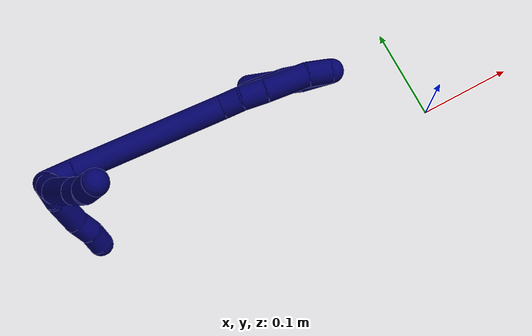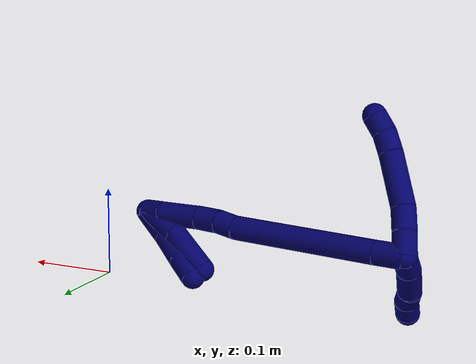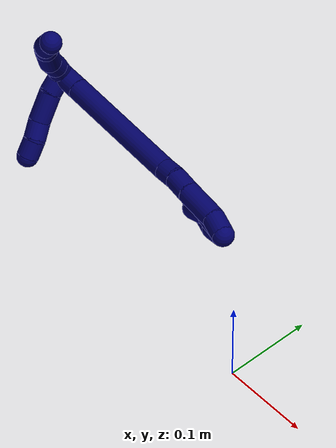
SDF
<sdf version="1.7">
 <world name="default">
  <model name="7">
   <static>0</static>
   <link name="7">
    <collision name="collision-cylinder-e_1_2_8">
     <pose>-0.0008 -0.004856 0.011464 0.400642 -0.064195 -0.013039</pose>
     <geometry><cylinder><radius>0.0125</radius><length>0.024951</length></cylinder></geometry>
     <surface>
      <friction><ode><mu>1.16</mu><mu2>1.16</mu2><slip1>0</slip1><slip2>0</slip2></ode></friction>
      <contact><ode><kp>1e+06</kp><kd>1</kd><max_vel>0</max_vel><min_depth>0.001</min_depth></ode></contact>
     </surface>
    </collision>
    <visual name="visual-cylinder-e_1_2_8">
     <pose>-0.0008 -0.004856 0.011464 0.400642 -0.064195 -0.013039</pose>
     <geometry><cylinder><radius>0.0125</radius><length>0.024951</length></cylinder></geometry>
     <material><ambient>0.003922 0 0.403922 1</ambient></material>
    </visual>
    <collision name="collision-cylinder-e_2_8_9">
     <pose>-0.001275 -0.015504 0.033944 0.484099 0.026154 0.006457</pose>
     <geometry><cylinder><radius>0.0125</radius><length>0.024902</length></cylinder></geometry>
     <surface>
      <friction><ode><mu>1.16</mu><mu2>1.16</mu2><slip1>0</slip1><slip2>0</slip2></ode></friction>
      <contact><ode><kp>1e+06</kp><kd>1</kd><max_vel>0</max_vel><min_depth>0.001</min_depth></ode></contact>
     </surface>
    </collision>
    <visual name="visual-cylinder-e_2_8_9">
     <pose>-0.001275 -0.015504 0.033944 0.484099 0.026154 0.006457</pose>
     <geometry><cylinder><radius>0.0125</radius><length>0.024902</length></cylinder></geometry>
     <material><ambient>0.003922 0 0.403922 1</ambient></material>
    </visual>
    <collision name="collision-cylinder-e_3_9_10">
     <pose>0.002935 -0.030438 0.071693 0.329493 0.136627 0.022749</pose>
     <geometry><cylinder><radius>0.0125</radius><length>0.057035</length></cylinder></geometry>
     <surface>
      <friction><ode><mu>1.16</mu><mu2>1.16</mu2><slip1>0</slip1><slip2>0</slip2></ode></friction>
      <contact><ode><kp>1e+06</kp><kd>1</kd><max_vel>0</max_vel><min_depth>0.001</min_depth></ode></contact>
     </surface>
    </collision>
    <visual name="visual-cylinder-e_3_9_10">
     <pose>0.002935 -0.030438 0.071693 0.329493 0.136627 0.022749</pose>
     <geometry><cylinder><radius>0.0125</radius><length>0.057035</length></cylinder></geometry>
     <material><ambient>0.003922 0 0.403922 1</ambient></material>
    </visual>
    <collision name="collision-cylinder-e_4_10_11">
     <pose>0.009257 -0.043149 0.109014 0.32513 0.214803 0.035363</pose>
     <geometry><cylinder><radius>0.0125</radius><length>0.022875</length></cylinder></geometry>
     <surface>
      <friction><ode><mu>1.16</mu><mu2>1.16</mu2><slip1>0</slip1><slip2>0</slip2></ode></friction>
      <contact><ode><kp>1e+06</kp><kd>1</kd><max_vel>0</max_vel><min_depth>0.001</min_depth></ode></contact>
     </surface>
    </collision>
    <visual name="visual-cylinder-e_4_10_11">
     <pose>0.009257 -0.043149 0.109014 0.32513 0.214803 0.035363</pose>
     <geometry><cylinder><radius>0.0125</radius><length>0.022875</length></cylinder></geometry>
     <material><ambient>0.003922 0 0.403922 1</ambient></material>
    </visual>
    <collision name="collision-cylinder-e_5_11_6">
     <pose>0.014812 -0.046971 0.129226 0.026224 0.313187 0.004141</pose>
     <geometry><cylinder><radius>0.0125</radius><length>0.020237</length></cylinder></geometry>
     <surface>
      <friction><ode><mu>1.16</mu><mu2>1.16</mu2><slip1>0</slip1><slip2>0</slip2></ode></friction>
      <contact><ode><kp>1e+06</kp><kd>1</kd><max_vel>0</max_vel><min_depth>0.001</min_depth></ode></contact>
     </surface>
    </collision>
    <visual name="visual-cylinder-e_5_11_6">
     <pose>0.014812 -0.046971 0.129226 0.026224 0.313187 0.004141</pose>
     <geometry><cylinder><radius>0.0125</radius><length>0.020237</length></cylinder></geometry>
     <material><ambient>0.003922 0 0.403922 1</ambient></material>
    </visual>
    <collision name="collision-cylinder-e_1_2_12">
     <pose>0.003812 -0.008352 -0.007495 2.30217 0.327441 0.709132</pose>
     <geometry><cylinder><radius>0.0125</radius><length>0.023703</length></cylinder></geometry>
     <surface>
      <friction><ode><mu>1.16</mu><mu2>1.16</mu2><slip1>0</slip1><slip2>0</slip2></ode></friction>
      <contact><ode><kp>1e+06</kp><kd>1</kd><max_vel>0</max_vel><min_depth>0.001</min_depth></ode></contact>
     </surface>
    </collision>
    <visual name="visual-cylinder-e_1_2_12">
     <pose>0.003812 -0.008352 -0.007495 2.30217 0.327441 0.709132</pose>
     <geometry><cylinder><radius>0.0125</radius><length>0.023703</length></cylinder></geometry>
     <material><ambient>0.003922 0 0.403922 1</ambient></material>
    </visual>
    <collision name="collision-cylinder-e_2_12_13">
     <pose>0.015179 -0.026808 -0.027015 2.44282 0.448342 1.11836</pose>
     <geometry><cylinder><radius>0.0125</radius><length>0.034859</length></cylinder></geometry>
     <surface>
      <friction><ode><mu>1.16</mu><mu2>1.16</mu2><slip1>0</slip1><slip2>0</slip2></ode></friction>
      <contact><ode><kp>1e+06</kp><kd>1</kd><max_vel>0</max_vel><min_depth>0.001</min_depth></ode></contact>
     </surface>
    </collision>
    <visual name="visual-cylinder-e_2_12_13">
     <pose>0.015179 -0.026808 -0.027015 2.44282 0.448342 1.11836</pose>
     <geometry><cylinder><radius>0.0125</radius><length>0.034859</length></cylinder></geometry>
     <material><ambient>0.003922 0 0.403922 1</ambient></material>
    </visual>
    <collision name="collision-cylinder-e_3_13_14">
     <pose>0.028974 -0.043162 -0.044572 2.29516 0.642028 1.27183</pose>
     <geometry><cylinder><radius>0.0125</radius><length>0.020842</length></cylinder></geometry>
     <surface>
      <friction><ode><mu>1.16</mu><mu2>1.16</mu2><slip1>0</slip1><slip2>0</slip2></ode></friction>
      <contact><ode><kp>1e+06</kp><kd>1</kd><max_vel>0</max_vel><min_depth>0.001</min_depth></ode></contact>
     </surface>
    </collision>
    <visual name="visual-cylinder-e_3_13_14">
     <pose>0.028974 -0.043162 -0.044572 2.29516 0.642028 1.27183</pose>
     <geometry><cylinder><radius>0.0125</radius><length>0.020842</length></cylinder></geometry>
     <material><ambient>0.003922 0 0.403922 1</ambient></material>
    </visual>
    <collision name="collision-cylinder-e_4_14_5">
     <pose>0.039421 -0.055389 -0.057358 2.45254 0.420753 1.07358</pose>
     <geometry><cylinder><radius>0.0125</radius><length>0.020596</length></cylinder></geometry>
     <surface>
      <friction><ode><mu>1.16</mu><mu2>1.16</mu2><slip1>0</slip1><slip2>0</slip2></ode></friction>
      <contact><ode><kp>1e+06</kp><kd>1</kd><max_vel>0</max_vel><min_depth>0.001</min_depth></ode></contact>
     </surface>
    </collision>
    <visual name="visual-cylinder-e_4_14_5">
     <pose>0.039421 -0.055389 -0.057358 2.45254 0.420753 1.07358</pose>
     <geometry><cylinder><radius>0.0125</radius><length>0.020596</length></cylinder></geometry>
     <material><ambient>0.003922 0 0.403922 1</ambient></material>
    </visual>
    <collision name="collision-cylinder-e_1_2_15">
     <pose>0.01428 0.001069 0.00508 -0.207473 1.22213 -0.145602</pose>
     <geometry><cylinder><radius>0.0125</radius><length>0.030388</length></cylinder></geometry>
     <surface>
      <friction><ode><mu>1.16</mu><mu2>1.16</mu2><slip1>0</slip1><slip2>0</slip2></ode></friction>
      <contact><ode><kp>1e+06</kp><kd>1</kd><max_vel>0</max_vel><min_depth>0.001</min_depth></ode></contact>
     </surface>
    </collision>
    <visual name="visual-cylinder-e_1_2_15">
     <pose>0.01428 0.001069 0.00508 -0.207473 1.22213 -0.145602</pose>
     <geometry><cylinder><radius>0.0125</radius><length>0.030388</length></cylinder></geometry>
     <material><ambient>0.003922 0 0.403922 1</ambient></material>
    </visual>
    <collision name="collision-cylinder-e_2_15_16">
     <pose>0.101369 0.006324 0.036774 -0.155997 1.21639 -0.108724</pose>
     <geometry><cylinder><radius>0.0125</radius><length>0.155268</length></cylinder></geometry>
     <surface>
      <friction><ode><mu>1.16</mu><mu2>1.16</mu2><slip1>0</slip1><slip2>0</slip2></ode></friction>
      <contact><ode><kp>1e+06</kp><kd>1</kd><max_vel>0</max_vel><min_depth>0.001</min_depth></ode></contact>
     </surface>
    </collision>
    <visual name="visual-cylinder-e_2_15_16">
     <pose>0.101369 0.006324 0.036774 -0.155997 1.21639 -0.108724</pose>
     <geometry><cylinder><radius>0.0125</radius><length>0.155268</length></cylinder></geometry>
     <material><ambient>0.003922 0 0.403922 1</ambient></material>
    </visual>
    <collision name="collision-cylinder-e_3_16_17">
     <pose>0.183158 0.010769 0.068374 -0.051872 1.06347 -0.030518</pose>
     <geometry><cylinder><radius>0.0125</radius><length>0.020548</length></cylinder></geometry>
     <surface>
      <friction><ode><mu>1.16</mu><mu2>1.16</mu2><slip1>0</slip1><slip2>0</slip2></ode></friction>
      <contact><ode><kp>1e+06</kp><kd>1</kd><max_vel>0</max_vel><min_depth>0.001</min_depth></ode></contact>
     </surface>
    </collision>
    <visual name="visual-cylinder-e_3_16_17">
     <pose>0.183158 0.010769 0.068374 -0.051872 1.06347 -0.030518</pose>
     <geometry><cylinder><radius>0.0125</radius><length>0.020548</length></cylinder></geometry>
     <material><ambient>0.003922 0 0.403922 1</ambient></material>
    </visual>
    <collision name="collision-cylinder-e_4_17_18">
     <pose>0.203782 0.010688 0.07754 0.081114 1.22496 0.057008</pose>
     <geometry><cylinder><radius>0.0125</radius><length>0.024753</length></cylinder></geometry>
     <surface>
      <friction><ode><mu>1.16</mu><mu2>1.16</mu2><slip1>0</slip1><slip2>0</slip2></ode></friction>
      <contact><ode><kp>1e+06</kp><kd>1</kd><max_vel>0</max_vel><min_depth>0.001</min_depth></ode></contact>
     </surface>
    </collision>
    <visual name="visual-cylinder-e_4_17_18">
     <pose>0.203782 0.010688 0.07754 0.081114 1.22496 0.057008</pose>
     <geometry><cylinder><radius>0.0125</radius><length>0.024753</length></cylinder></geometry>
     <material><ambient>0.003922 0 0.403922 1</ambient></material>
    </visual>
    <collision name="collision-cylinder-e_5_18_19">
     <pose>0.236675 0.010968 0.08833 -0.093546 1.26807 -0.068809</pose>
     <geometry><cylinder><radius>0.0125</radius><length>0.044524</length></cylinder></geometry>
     <surface>
      <friction><ode><mu>1.16</mu><mu2>1.16</mu2><slip1>0</slip1><slip2>0</slip2></ode></friction>
      <contact><ode><kp>1e+06</kp><kd>1</kd><max_vel>0</max_vel><min_depth>0.001</min_depth></ode></contact>
     </surface>
    </collision>
    <visual name="visual-cylinder-e_5_18_19">
     <pose>0.236675 0.010968 0.08833 -0.093546 1.26807 -0.068809</pose>
     <geometry><cylinder><radius>0.0125</radius><length>0.044524</length></cylinder></geometry>
     <material><ambient>0.003922 0 0.403922 1</ambient></material>
    </visual>
    <collision name="collision-cylinder-e_6_19_1">
     <pose>0.269594 0.009263 0.097891 0.666973 1.25916 0.494401</pose>
     <geometry><cylinder><radius>0.0125</radius><length>0.024519</length></cylinder></geometry>
     <surface>
      <friction><ode><mu>1.16</mu><mu2>1.16</mu2><slip1>0</slip1><slip2>0</slip2></ode></friction>
      <contact><ode><kp>1e+06</kp><kd>1</kd><max_vel>0</max_vel><min_depth>0.001</min_depth></ode></contact>
     </surface>
    </collision>
    <visual name="visual-cylinder-e_6_19_1">
     <pose>0.269594 0.009263 0.097891 0.666973 1.25916 0.494401</pose>
     <geometry><cylinder><radius>0.0125</radius><length>0.024519</length></cylinder></geometry>
     <material><ambient>0.003922 0 0.403922 1</ambient></material>
    </visual>
    <collision name="collision-cylinder-e_1_1_20">
     <pose>0.270721 0.010911 0.086163 -2.87729 -0.606089 2.33764</pose>
     <geometry><cylinder><radius>0.0125</radius><length>0.037012</length></cylinder></geometry>
     <surface>
      <friction><ode><mu>1.16</mu><mu2>1.16</mu2><slip1>0</slip1><slip2>0</slip2></ode></friction>
      <contact><ode><kp>1e+06</kp><kd>1</kd><max_vel>0</max_vel><min_depth>0.001</min_depth></ode></contact>
     </surface>
    </collision>
    <visual name="visual-cylinder-e_1_1_20">
     <pose>0.270721 0.010911 0.086163 -2.87729 -0.606089 2.33764</pose>
     <geometry><cylinder><radius>0.0125</radius><length>0.037012</length></cylinder></geometry>
     <material><ambient>0.003922 0 0.403922 1</ambient></material>
    </visual>
    <collision name="collision-cylinder-e_2_20_21">
     <pose>0.250012 0.021032 0.058173 -2.70883 -0.606326 1.91646</pose>
     <geometry><cylinder><radius>0.0125</radius><length>0.03568</length></cylinder></geometry>
     <surface>
      <friction><ode><mu>1.16</mu><mu2>1.16</mu2><slip1>0</slip1><slip2>0</slip2></ode></friction>
      <contact><ode><kp>1e+06</kp><kd>1</kd><max_vel>0</max_vel><min_depth>0.001</min_depth></ode></contact>
     </surface>
    </collision>
    <visual name="visual-cylinder-e_2_20_21">
     <pose>0.250012 0.021032 0.058173 -2.70883 -0.606326 1.91646</pose>
     <geometry><cylinder><radius>0.0125</radius><length>0.03568</length></cylinder></geometry>
     <material><ambient>0.003922 0 0.403922 1</ambient></material>
    </visual>
    <collision name="collision-cylinder-e_3_21_4">
     <pose>0.231871 0.031619 0.034709 -2.72951 -0.623719 1.9912</pose>
     <geometry><cylinder><radius>0.0125</radius><length>0.027308</length></cylinder></geometry>
     <surface>
      <friction><ode><mu>1.16</mu><mu2>1.16</mu2><slip1>0</slip1><slip2>0</slip2></ode></friction>
      <contact><ode><kp>1e+06</kp><kd>1</kd><max_vel>0</max_vel><min_depth>0.001</min_depth></ode></contact>
     </surface>
    </collision>
    <visual name="visual-cylinder-e_3_21_4">
     <pose>0.231871 0.031619 0.034709 -2.72951 -0.623719 1.9912</pose>
     <geometry><cylinder><radius>0.0125</radius><length>0.027308</length></cylinder></geometry>
     <material><ambient>0.003922 0 0.403922 1</ambient></material>
    </visual>
    <collision name="collision-cylinder-e_1_1_22">
     <pose>0.262814 0.013062 0.085668 -2.758 -0.845175 2.32631</pose>
     <geometry><cylinder><radius>0.0125</radius><length>0.049323</length></cylinder></geometry>
     <surface>
      <friction><ode><mu>1.16</mu><mu2>1.16</mu2><slip1>0</slip1><slip2>0</slip2></ode></friction>
      <contact><ode><kp>1e+06</kp><kd>1</kd><max_vel>0</max_vel><min_depth>0.001</min_depth></ode></contact>
     </surface>
    </collision>
    <visual name="visual-cylinder-e_1_1_22">
     <pose>0.262814 0.013062 0.085668 -2.758 -0.845175 2.32631</pose>
     <geometry><cylinder><radius>0.0125</radius><length>0.049323</length></cylinder></geometry>
     <material><ambient>0.003922 0 0.403922 1</ambient></material>
    </visual>
    <collision name="collision-cylinder-e_2_22_3">
     <pose>0.230243 0.023189 0.049838 -2.9502 -0.591145 2.53084</pose>
     <geometry><cylinder><radius>0.0125</radius><length>0.050677</length></cylinder></geometry>
     <surface>
      <friction><ode><mu>1.16</mu><mu2>1.16</mu2><slip1>0</slip1><slip2>0</slip2></ode></friction>
      <contact><ode><kp>1e+06</kp><kd>1</kd><max_vel>0</max_vel><min_depth>0.001</min_depth></ode></contact>
     </surface>
    </collision>
    <visual name="visual-cylinder-e_2_22_3">
     <pose>0.230243 0.023189 0.049838 -2.9502 -0.591145 2.53084</pose>
     <geometry><cylinder><radius>0.0125</radius><length>0.050677</length></cylinder></geometry>
     <material><ambient>0.003922 0 0.403922 1</ambient></material>
    </visual>
    <collision name="collision-sphere-3">
     <pose>0.216122 0.027191 0.029183 0 -0 0</pose>
     <geometry><sphere><radius>0.0125</radius></sphere></geometry>
     <surface>
      <friction><ode><mu>1.16</mu><mu2>1.16</mu2><slip1>0</slip1><slip2>0</slip2></ode></friction>
      <contact><ode><kp>1e+06</kp><kd>1</kd><max_vel>0</max_vel><min_depth>0.001</min_depth></ode></contact>
     </surface>
    </collision>
    <visual name="visual-sphere-3">
     <pose>0.216122 0.027191 0.029183 0 -0 0</pose>
     <geometry><sphere><radius>0.0125</radius></sphere></geometry>
     <material><ambient>0.003922 0 0.403922 1</ambient></material>
    </visual>
    <collision name="collision-sphere-22">
     <pose>0.244365 0.019187 0.070492 0 -0 0</pose>
     <geometry><sphere><radius>0.0125</radius></sphere></geometry>
     <surface>
      <friction><ode><mu>1.16</mu><mu2>1.16</mu2><slip1>0</slip1><slip2>0</slip2></ode></friction>
      <contact><ode><kp>1e+06</kp><kd>1</kd><max_vel>0</max_vel><min_depth>0.001</min_depth></ode></contact>
     </surface>
    </collision>
    <visual name="visual-sphere-22">
     <pose>0.244365 0.019187 0.070492 0 -0 0</pose>
     <geometry><sphere><radius>0.0125</radius></sphere></geometry>
     <material><ambient>0.003922 0 0.403922 1</ambient></material>
    </visual>
    <collision name="collision-sphere-4">
     <pose>0.223897 0.036058 0.024553 0 -0 0</pose>
     <geometry><sphere><radius>0.0125</radius></sphere></geometry>
     <surface>
      <friction><ode><mu>1.16</mu><mu2>1.16</mu2><slip1>0</slip1><slip2>0</slip2></ode></friction>
      <contact><ode><kp>1e+06</kp><kd>1</kd><max_vel>0</max_vel><min_depth>0.001</min_depth></ode></contact>
     </surface>
    </collision>
    <visual name="visual-sphere-4">
     <pose>0.223897 0.036058 0.024553 0 -0 0</pose>
     <geometry><sphere><radius>0.0125</radius></sphere></geometry>
     <material><ambient>0.003922 0 0.403922 1</ambient></material>
    </visual>
    <collision name="collision-sphere-21">
     <pose>0.239846 0.02718 0.044864 0 -0 0</pose>
     <geometry><sphere><radius>0.0125</radius></sphere></geometry>
     <surface>
      <friction><ode><mu>1.16</mu><mu2>1.16</mu2><slip1>0</slip1><slip2>0</slip2></ode></friction>
      <contact><ode><kp>1e+06</kp><kd>1</kd><max_vel>0</max_vel><min_depth>0.001</min_depth></ode></contact>
     </surface>
    </collision>
    <visual name="visual-sphere-21">
     <pose>0.239846 0.02718 0.044864 0 -0 0</pose>
     <geometry><sphere><radius>0.0125</radius></sphere></geometry>
     <material><ambient>0.003922 0 0.403922 1</ambient></material>
    </visual>
    <collision name="collision-sphere-20">
     <pose>0.260179 0.014884 0.071481 0 -0 0</pose>
     <geometry><sphere><radius>0.0125</radius></sphere></geometry>
     <surface>
      <friction><ode><mu>1.16</mu><mu2>1.16</mu2><slip1>0</slip1><slip2>0</slip2></ode></friction>
      <contact><ode><kp>1e+06</kp><kd>1</kd><max_vel>0</max_vel><min_depth>0.001</min_depth></ode></contact>
     </surface>
    </collision>
    <visual name="visual-sphere-20">
     <pose>0.260179 0.014884 0.071481 0 -0 0</pose>
     <geometry><sphere><radius>0.0125</radius></sphere></geometry>
     <material><ambient>0.003922 0 0.403922 1</ambient></material>
    </visual>
    <collision name="collision-sphere-6">
     <pose>0.01793 -0.047223 0.138849 0 -0 0</pose>
     <geometry><sphere><radius>0.0125</radius></sphere></geometry>
     <surface>
      <friction><ode><mu>1.16</mu><mu2>1.16</mu2><slip1>0</slip1><slip2>0</slip2></ode></friction>
      <contact><ode><kp>1e+06</kp><kd>1</kd><max_vel>0</max_vel><min_depth>0.001</min_depth></ode></contact>
     </surface>
    </collision>
    <visual name="visual-sphere-6">
     <pose>0.01793 -0.047223 0.138849 0 -0 0</pose>
     <geometry><sphere><radius>0.0125</radius></sphere></geometry>
     <material><ambient>0.003922 0 0.403922 1</ambient></material>
    </visual>
    <collision name="collision-sphere-11">
     <pose>0.011695 -0.046718 0.119603 0 -0 0</pose>
     <geometry><sphere><radius>0.0125</radius></sphere></geometry>
     <surface>
      <friction><ode><mu>1.16</mu><mu2>1.16</mu2><slip1>0</slip1><slip2>0</slip2></ode></friction>
      <contact><ode><kp>1e+06</kp><kd>1</kd><max_vel>0</max_vel><min_depth>0.001</min_depth></ode></contact>
     </surface>
    </collision>
    <visual name="visual-sphere-11">
     <pose>0.011695 -0.046718 0.119603 0 -0 0</pose>
     <geometry><sphere><radius>0.0125</radius></sphere></geometry>
     <material><ambient>0.003922 0 0.403922 1</ambient></material>
    </visual>
    <collision name="collision-sphere-10">
     <pose>0.006819 -0.039579 0.098425 0 -0 0</pose>
     <geometry><sphere><radius>0.0125</radius></sphere></geometry>
     <surface>
      <friction><ode><mu>1.16</mu><mu2>1.16</mu2><slip1>0</slip1><slip2>0</slip2></ode></friction>
      <contact><ode><kp>1e+06</kp><kd>1</kd><max_vel>0</max_vel><min_depth>0.001</min_depth></ode></contact>
     </surface>
    </collision>
    <visual name="visual-sphere-10">
     <pose>0.006819 -0.039579 0.098425 0 -0 0</pose>
     <geometry><sphere><radius>0.0125</radius></sphere></geometry>
     <material><ambient>0.003922 0 0.403922 1</ambient></material>
    </visual>
    <collision name="collision-sphere-9">
     <pose>-0.000949 -0.021297 0.044961 0 -0 0</pose>
     <geometry><sphere><radius>0.0125</radius></sphere></geometry>
     <surface>
      <friction><ode><mu>1.16</mu><mu2>1.16</mu2><slip1>0</slip1><slip2>0</slip2></ode></friction>
      <contact><ode><kp>1e+06</kp><kd>1</kd><max_vel>0</max_vel><min_depth>0.001</min_depth></ode></contact>
     </surface>
    </collision>
    <visual name="visual-sphere-9">
     <pose>-0.000949 -0.021297 0.044961 0 -0 0</pose>
     <geometry><sphere><radius>0.0125</radius></sphere></geometry>
     <material><ambient>0.003922 0 0.403922 1</ambient></material>
    </visual>
    <collision name="collision-sphere-2">
     <geometry><sphere><radius>0.0125</radius></sphere></geometry>
     <surface>
      <friction><ode><mu>1.16</mu><mu2>1.16</mu2><slip1>0</slip1><slip2>0</slip2></ode></friction>
      <contact><ode><kp>1e+06</kp><kd>1</kd><max_vel>0</max_vel><min_depth>0.001</min_depth></ode></contact>
     </surface>
    </collision>
    <visual name="visual-sphere-2">
     <geometry><sphere><radius>0.0125</radius></sphere></geometry>
     <material><ambient>0.003922 0 0.403922 1</ambient></material>
    </visual>
    <collision name="collision-sphere-19">
     <pose>0.257925 0.011588 0.094937 0 -0 0</pose>
     <geometry><sphere><radius>0.0125</radius></sphere></geometry>
     <surface>
      <friction><ode><mu>1.16</mu><mu2>1.16</mu2><slip1>0</slip1><slip2>0</slip2></ode></friction>
      <contact><ode><kp>1e+06</kp><kd>1</kd><max_vel>0</max_vel><min_depth>0.001</min_depth></ode></contact>
     </surface>
    </collision>
    <visual name="visual-sphere-19">
     <pose>0.257925 0.011588 0.094937 0 -0 0</pose>
     <geometry><sphere><radius>0.0125</radius></sphere></geometry>
     <material><ambient>0.003922 0 0.403922 1</ambient></material>
    </visual>
    <collision name="collision-sphere-8">
     <pose>-0.001601 -0.009711 0.022928 0 -0 0</pose>
     <geometry><sphere><radius>0.0125</radius></sphere></geometry>
     <surface>
      <friction><ode><mu>1.16</mu><mu2>1.16</mu2><slip1>0</slip1><slip2>0</slip2></ode></friction>
      <contact><ode><kp>1e+06</kp><kd>1</kd><max_vel>0</max_vel><min_depth>0.001</min_depth></ode></contact>
     </surface>
    </collision>
    <visual name="visual-sphere-8">
     <pose>-0.001601 -0.009711 0.022928 0 -0 0</pose>
     <geometry><sphere><radius>0.0125</radius></sphere></geometry>
     <material><ambient>0.003922 0 0.403922 1</ambient></material>
    </visual>
    <collision name="collision-sphere-12">
     <pose>0.007623 -0.016704 -0.01499 0 -0 0</pose>
     <geometry><sphere><radius>0.0125</radius></sphere></geometry>
     <surface>
      <friction><ode><mu>1.16</mu><mu2>1.16</mu2><slip1>0</slip1><slip2>0</slip2></ode></friction>
      <contact><ode><kp>1e+06</kp><kd>1</kd><max_vel>0</max_vel><min_depth>0.001</min_depth></ode></contact>
     </surface>
    </collision>
    <visual name="visual-sphere-12">
     <pose>0.007623 -0.016704 -0.01499 0 -0 0</pose>
     <geometry><sphere><radius>0.0125</radius></sphere></geometry>
     <material><ambient>0.003922 0 0.403922 1</ambient></material>
    </visual>
    <collision name="collision-sphere-13">
     <pose>0.022734 -0.036912 -0.039041 0 -0 0</pose>
     <geometry><sphere><radius>0.0125</radius></sphere></geometry>
     <surface>
      <friction><ode><mu>1.16</mu><mu2>1.16</mu2><slip1>0</slip1><slip2>0</slip2></ode></friction>
      <contact><ode><kp>1e+06</kp><kd>1</kd><max_vel>0</max_vel><min_depth>0.001</min_depth></ode></contact>
     </surface>
    </collision>
    <visual name="visual-sphere-13">
     <pose>0.022734 -0.036912 -0.039041 0 -0 0</pose>
     <geometry><sphere><radius>0.0125</radius></sphere></geometry>
     <material><ambient>0.003922 0 0.403922 1</ambient></material>
    </visual>
    <collision name="collision-sphere-14">
     <pose>0.035215 -0.049413 -0.050102 0 -0 0</pose>
     <geometry><sphere><radius>0.0125</radius></sphere></geometry>
     <surface>
      <friction><ode><mu>1.16</mu><mu2>1.16</mu2><slip1>0</slip1><slip2>0</slip2></ode></friction>
      <contact><ode><kp>1e+06</kp><kd>1</kd><max_vel>0</max_vel><min_depth>0.001</min_depth></ode></contact>
     </surface>
    </collision>
    <visual name="visual-sphere-14">
     <pose>0.035215 -0.049413 -0.050102 0 -0 0</pose>
     <geometry><sphere><radius>0.0125</radius></sphere></geometry>
     <material><ambient>0.003922 0 0.403922 1</ambient></material>
    </visual>
    <collision name="collision-sphere-5">
     <pose>0.043627 -0.061366 -0.064613 0 -0 0</pose>
     <geometry><sphere><radius>0.0125</radius></sphere></geometry>
     <surface>
      <friction><ode><mu>1.16</mu><mu2>1.16</mu2><slip1>0</slip1><slip2>0</slip2></ode></friction>
      <contact><ode><kp>1e+06</kp><kd>1</kd><max_vel>0</max_vel><min_depth>0.001</min_depth></ode></contact>
     </surface>
    </collision>
    <visual name="visual-sphere-5">
     <pose>0.043627 -0.061366 -0.064613 0 -0 0</pose>
     <geometry><sphere><radius>0.0125</radius></sphere></geometry>
     <material><ambient>0.003922 0 0.403922 1</ambient></material>
    </visual>
    <collision name="collision-sphere-15">
     <pose>0.028559 0.002139 0.010159 0 -0 0</pose>
     <geometry><sphere><radius>0.0125</radius></sphere></geometry>
     <surface>
      <friction><ode><mu>1.16</mu><mu2>1.16</mu2><slip1>0</slip1><slip2>0</slip2></ode></friction>
      <contact><ode><kp>1e+06</kp><kd>1</kd><max_vel>0</max_vel><min_depth>0.001</min_depth></ode></contact>
     </surface>
    </collision>
    <visual name="visual-sphere-15">
     <pose>0.028559 0.002139 0.010159 0 -0 0</pose>
     <geometry><sphere><radius>0.0125</radius></sphere></geometry>
     <material><ambient>0.003922 0 0.403922 1</ambient></material>
    </visual>
    <collision name="collision-sphere-16">
     <pose>0.174178 0.01051 0.063389 0 -0 0</pose>
     <geometry><sphere><radius>0.0125</radius></sphere></geometry>
     <surface>
      <friction><ode><mu>1.16</mu><mu2>1.16</mu2><slip1>0</slip1><slip2>0</slip2></ode></friction>
      <contact><ode><kp>1e+06</kp><kd>1</kd><max_vel>0</max_vel><min_depth>0.001</min_depth></ode></contact>
     </surface>
    </collision>
    <visual name="visual-sphere-16">
     <pose>0.174178 0.01051 0.063389 0 -0 0</pose>
     <geometry><sphere><radius>0.0125</radius></sphere></geometry>
     <material><ambient>0.003922 0 0.403922 1</ambient></material>
    </visual>
    <collision name="collision-sphere-17">
     <pose>0.192138 0.011028 0.073358 0 -0 0</pose>
     <geometry><sphere><radius>0.0125</radius></sphere></geometry>
     <surface>
      <friction><ode><mu>1.16</mu><mu2>1.16</mu2><slip1>0</slip1><slip2>0</slip2></ode></friction>
      <contact><ode><kp>1e+06</kp><kd>1</kd><max_vel>0</max_vel><min_depth>0.001</min_depth></ode></contact>
     </surface>
    </collision>
    <visual name="visual-sphere-17">
     <pose>0.192138 0.011028 0.073358 0 -0 0</pose>
     <geometry><sphere><radius>0.0125</radius></sphere></geometry>
     <material><ambient>0.003922 0 0.403922 1</ambient></material>
    </visual>
    <collision name="collision-sphere-18">
     <pose>0.215425 0.010348 0.081722 0 -0 0</pose>
     <geometry><sphere><radius>0.0125</radius></sphere></geometry>
     <surface>
      <friction><ode><mu>1.16</mu><mu2>1.16</mu2><slip1>0</slip1><slip2>0</slip2></ode></friction>
      <contact><ode><kp>1e+06</kp><kd>1</kd><max_vel>0</max_vel><min_depth>0.001</min_depth></ode></contact>
     </surface>
    </collision>
    <visual name="visual-sphere-18">
     <pose>0.215425 0.010348 0.081722 0 -0 0</pose>
     <geometry><sphere><radius>0.0125</radius></sphere></geometry>
     <material><ambient>0.003922 0 0.403922 1</ambient></material>
    </visual>
    <collision name="collision-sphere-1">
     <pose>0.281263 0.006937 0.100844 0 -0 0</pose>
     <geometry><sphere><radius>0.0125</radius></sphere></geometry>
     <surface>
      <friction><ode><mu>1.16</mu><mu2>1.16</mu2><slip1>0</slip1><slip2>0</slip2></ode></friction>
      <contact><ode><kp>1e+06</kp><kd>1</kd><max_vel>0</max_vel><min_depth>0.001</min_depth></ode></contact>
     </surface>
    </collision>
    <visual name="visual-sphere-1">
     <pose>0.281263 0.006937 0.100844 0 -0 0</pose>
     <geometry><sphere><radius>0.0125</radius></sphere></geometry>
     <material><ambient>0.003922 0 0.403922 1</ambient></material>
    </visual>
    <inertial>
     <pose>0.126259 -0.001734 0.047446 0 -0 0</pose>
     <mass>0.75</mass>
     <inertia>
      <ixx>0.00016</ixx>
      <ixy>0</ixy>
      <ixz>0</ixz>
      <iyy>0.000402</iyy>
      <iyz>0</iyz>
      <izz>-0.000309</izz>
     </inertia>
    </inertial>
   </link>
   <pose>-0.383292 0.096866 0.088799 0.023669 0.319471 -0.126191</pose>
  </model>
 </world>
</sdf>
